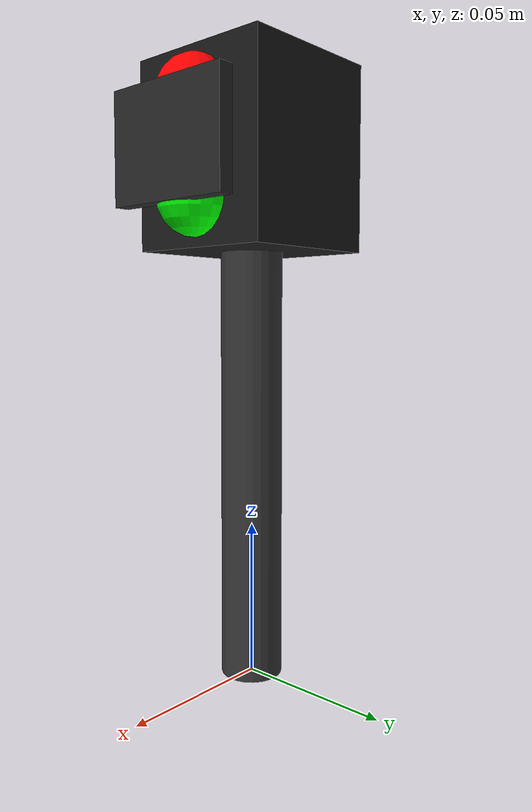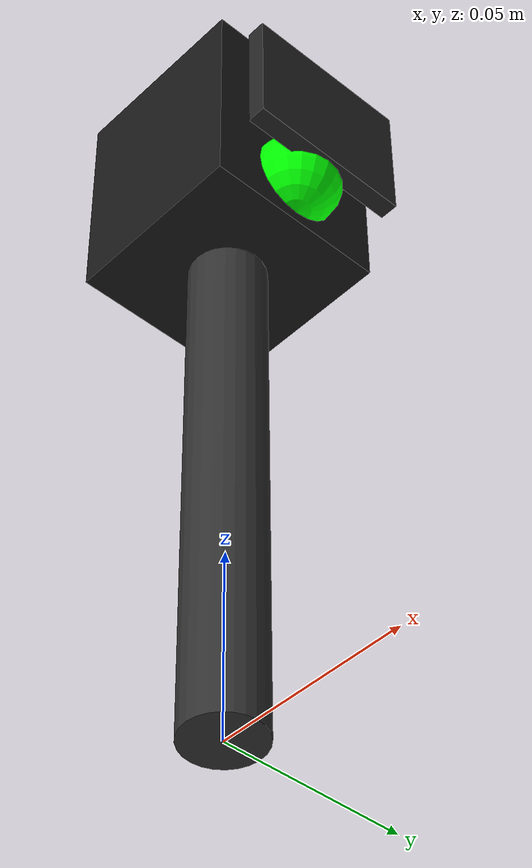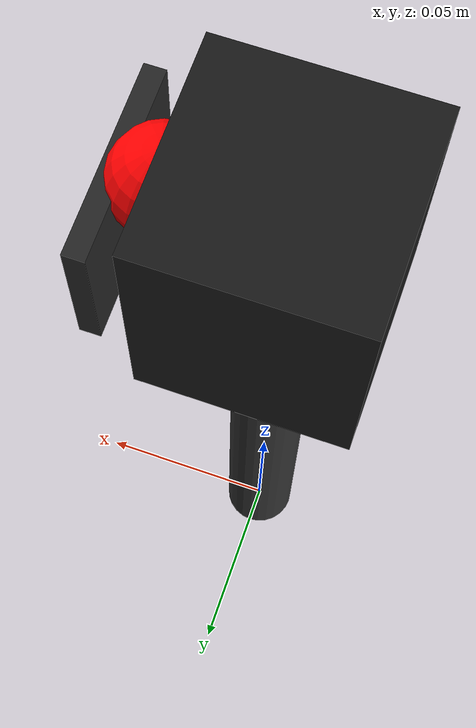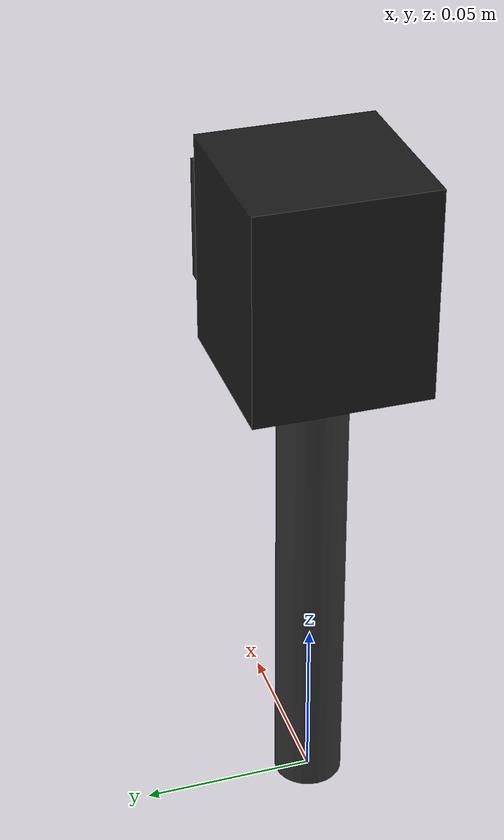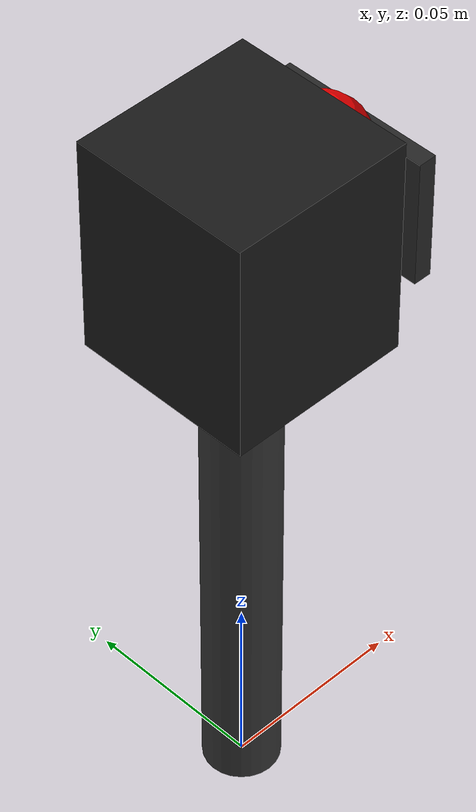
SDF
<?xml version="1.0" ?>
<sdf version="1.8">
  <model name="traffic_light">
    <static>false</static>

    <link name="pole">
      <pose>0 0 0.07 0 0 0</pose>
      <gravity>false</gravity>
      <visual name="v">
        <geometry><cylinder><radius>0.01</radius><length>0.14</length></cylinder></geometry>
        <material><ambient>0.2 0.2 0.2 1</ambient></material>
      </visual>
    </link>

    <link name="head">
      <pose>0 0 0.17 0 0 0</pose>
      <gravity>false</gravity>
      <visual name="v">
        <geometry><box><size>0.05 0.05 0.06</size></box></geometry>
        <material><ambient>0.1 0.1 0.1 1</ambient></material>
      </visual>
    </link>

    <link name="red_light">
      <pose>0.025 0 0.185 0 0 0</pose>
      <gravity>false</gravity>
      <visual name="v">
        <geometry><sphere><radius>0.012</radius></sphere></geometry>
        <material><ambient>1 0 0 1</ambient><emissive>1 0 0 1</emissive></material>
      </visual>
    </link>

    <link name="green_light">
      <pose>0.025 0 0.155 0 0 0</pose>
      <gravity>false</gravity>
      <visual name="v">
        <geometry><sphere><radius>0.012</radius></sphere></geometry>
        <material><ambient>0 1 0 1</ambient><emissive>0 1 0 1</emissive></material>
      </visual>
    </link>

    <link name="mask">
      <pose>0.035 0 0.17 0 0 0</pose>
      <gravity>false</gravity>
      <inertial>
        <mass>0.1</mass> <inertia>
          <ixx>0.001</ixx><iyy>0.001</iyy><izz>0.001</izz>
        </inertia>
      </inertial>
      <visual name="v">
        <geometry><box><size>0.005 0.045 0.035</size></box></geometry>
        <material><ambient>0.15 0.15 0.15 1</ambient></material>
      </visual>
    </link>

    <joint name="pole_to_head" type="fixed"><parent>pole</parent><child>head</child></joint>
    <joint name="r_fix" type="fixed"><parent>head</parent><child>red_light</child></joint>
    <joint name="g_fix" type="fixed"><parent>head</parent><child>green_light</child></joint>

    <joint name="mask_joint" type="prismatic">
      <parent>head</parent>
      <child>mask</child>
      <axis>
        <xyz>0 0 1</xyz>
        <limit><lower>-0.015</lower><upper>0.015</upper></limit>
        <dynamics><damping>50.0</damping></dynamics>
      </axis>
    </joint>

    <plugin filename="gz-sim-joint-position-controller-system" name="gz::sim::systems::JointPositionController">
      <joint_name>mask_joint</joint_name>
      <topic>/traffic_light/cmd_pos</topic>
      <p_gain>2500.0</p_gain>
      <d_gain>10.0</d_gain>
    </plugin>
  </model>
</sdf>
